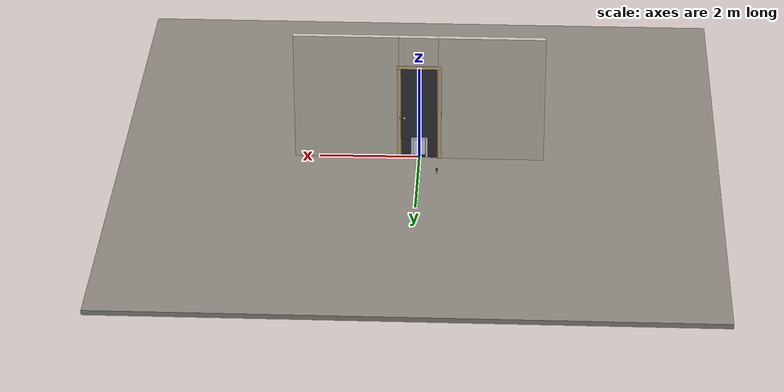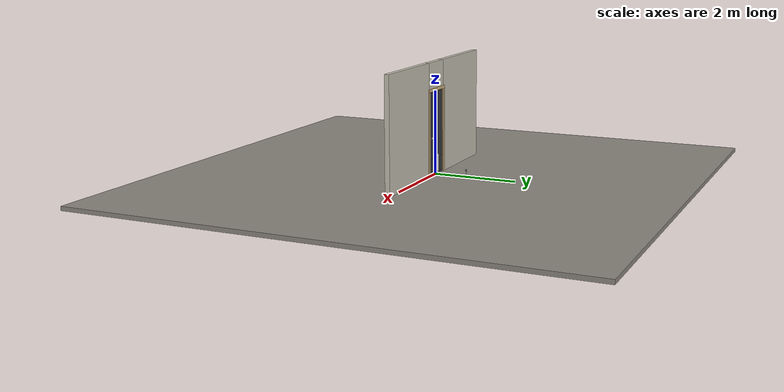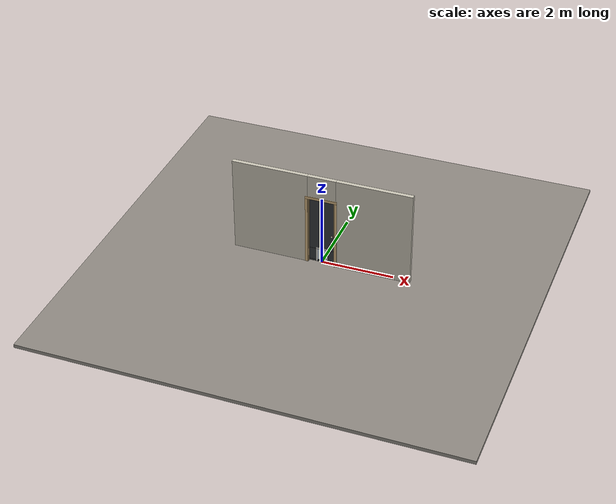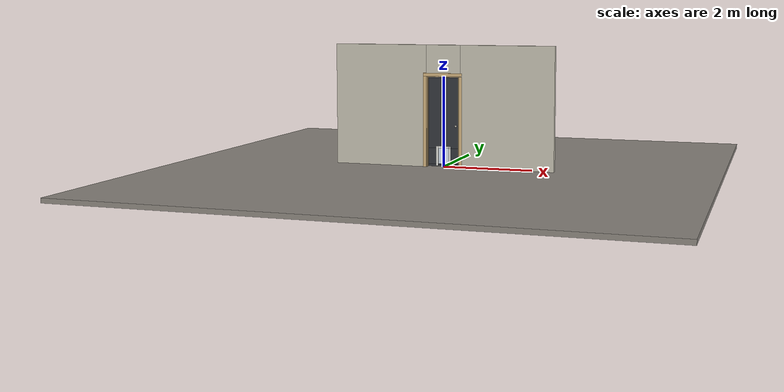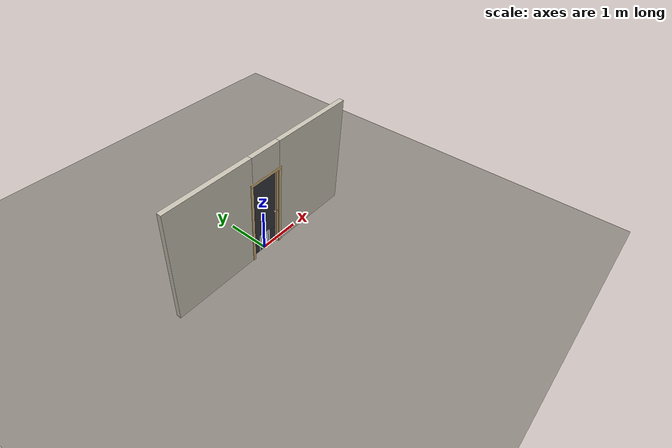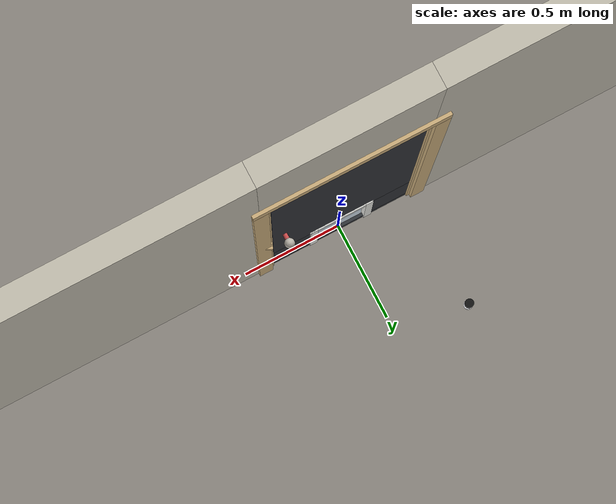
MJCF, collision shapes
<?xml version="1.0" ?>
<mujoco model="db0111_swing_single_full">
  <compiler angle="radian" meshdir="../../hardware" texturedir="../../textures" autolimits="true" inertiafromgeom="false"/>
  <option timestep="0.002" integrator="implicitfast" cone="elliptic" impratio="10" noslip_iterations="3">
    <flag multiccd="enable"/>
  </option>
  <size memory="16M"/>
  <default>
    <geom condim="4" solref="0.005 1" solimp="0.95 0.99 0.001"/>
    <joint solreflimit="0.005 1" solimplimit="0.95 0.99 0.001"/>
    <tendon solreflimit="0.005 1"/>
    <equality solref="0.002 1"/>
  </default>
  <visual>
    <headlight ambient="0.4 0.4 0.4" diffuse="0.7 0.7 0.7" specular="0.2 0.2 0.2"/>
    <quality shadowsize="4096"/>
    <map znear="0.01" zfar="60"/>
  </visual>
  <asset>
    <mesh name="coat_hook_d622d37ad0" file="coat_hook_d622d37ad0.obj"/>
    <mesh name="hinge_e3fd49fe13" file="hinge_e3fd49fe13.obj"/>
    <mesh name="hinge_jamb_e47eb19c39" file="hinge_jamb_e47eb19c39.obj"/>
    <mesh name="knob_248d825e64" file="knob_248d825e64.obj"/>
    <mesh name="knob_d1888f6f03" file="knob_d1888f6f03.obj"/>
    <material name="mat_floor" rgba="0.55 0.53 0.5 1" specular="0.2" shininess="0.15" reflectance="0"/>
    <material name="mat_wall" rgba="0.78 0.76 0.7 1" specular="0.2" shininess="0.1" reflectance="0"/>
    <material name="mat_leaf" rgba="0.2 0.21 0.23 1" specular="0.2" shininess="0.48" reflectance="0"/>
    <material name="mat_leaf_louver" rgba="0.17 0.178 0.196 1" specular="0.2" shininess="0.4" reflectance="0"/>
    <material name="mat_hinge" rgba="0.65 0.66 0.68 1" specular="0.74" shininess="0.5" reflectance="0.36"/>
    <material name="mat_op_nickel_satin" rgba="0.72 0.7 0.66 1" specular="0.8" shininess="0.65" reflectance="0.4"/>
    <material name="mat_trim" rgba="0.85 0.66 0.3 1" specular="0.8" shininess="0.75" reflectance="0.4"/>
    <material name="mat_bolt" rgba="0.85 0.66 0.3 1" specular="0.8" shininess="0.75" reflectance="0.4"/>
    <material name="mat_frame" rgba="0.82 0.7 0.5 1" specular="0.2" shininess="0.45" reflectance="0"/>
    <material name="mat_seal" rgba="0.1 0.1 0.1 1" specular="0.2" shininess="0.1" reflectance="0"/>
    <material name="mat_hook" rgba="0.9 0.9 0.92 1" specular="0.8" shininess="0.9" reflectance="0.4"/>
    <material name="mat_petframe" rgba="0.92 0.92 0.9 1" specular="0.2" shininess="0.6" reflectance="0"/>
    <material name="mat_petflap" rgba="0.85 0.9 0.95 0.45" specular="0.2" shininess="0.7" reflectance="0.1"/>
    <material name="mat_bumper_stop" rgba="0.08 0.08 0.08 1" specular="0.2" shininess="0.1" reflectance="0"/>
    <material name="mat_stop_base" rgba="0.9 0.9 0.92 1" specular="0.8" shininess="0.9" reflectance="0.4"/>
    <texture name="skybox" type="skybox" builtin="gradient" rgb1="0.6 0.7 0.85" rgb2="0.9 0.92 0.95" width="256" height="256"/>
  </asset>
  <worldbody>
    <light name="sun" pos="1.5 -2.5 4" dir="-0.3 0.5 -0.8" directional="true" diffuse="0.8 0.8 0.8" specular="0.3 0.3 0.3" castshadow="true"/>
    <light name="fill" pos="-1.5 2.5 3" dir="0.3 -0.5 -0.7" directional="true" diffuse="0.35 0.35 0.4" castshadow="false"/>
    <camera name="robot_view" pos="0 -2.531125 1.698475" xyaxes="1 0 0 0 0.26963 0.962964" fovy="52"/>
    <camera name="far_view" pos="0 2.465125 1.698475" xyaxes="-1 0 0 0 -0.26963 0.962964" fovy="52"/>
    <camera name="iso" pos="1.898575 -2.131425 2.098175" xyaxes="0.741536 0.670913 0 -0.242917 0.268487 0.932151" fovy="46"/>
    <camera name="detail_handle" pos="0.475 -0.864 1.194" xyaxes="0.97561 0.219512 0 -0.070934 0.315262 0.94635" fovy="38"/>
    <geom name="floor" type="box" size="6 6 0.05" pos="0 0 -0.05" material="mat_floor" group="0" contype="1" conaffinity="1" friction="0.8 0.005 0.0001" density="2400"/>
    <geom name="wall_left" type="box" size="1.061 0.0575 1.35" pos="-1.439 -0.033 1.35" material="mat_wall" group="0" contype="1" conaffinity="1" friction="0.6 0.005 0.0001" density="800"/>
    <geom name="wall_right" type="box" size="1.046 0.0575 1.35" pos="1.454 -0.033 1.35" material="mat_wall" group="0" contype="1" conaffinity="1" friction="0.6 0.005 0.0001" density="800"/>
    <geom name="wall_header" type="box" size="0.393 0.0575 0.3265" pos="0.015 -0.033 2.3735" material="mat_wall" group="0" contype="1" conaffinity="1" friction="0.6 0.005 0.0001" density="800"/>
    <geom name="hinge_0_jamb" type="mesh" mesh="hinge_jamb_e47eb19c39" pos="-0.356 0.0245 0.259" quat="0 1 0 0" material="mat_hinge" group="1" contype="0" conaffinity="0" density="7850"/>
    <geom name="hinge_1_jamb" type="mesh" mesh="hinge_jamb_e47eb19c39" pos="-0.356 0.0245 1.814" quat="0 1 0 0" material="mat_hinge" group="1" contype="0" conaffinity="0" density="7850"/>
    <geom name="jamb_hinge" type="box" size="0.0095 0.0575 0.999" pos="-0.3685 -0.033 0.999" material="mat_frame" group="0" contype="1" conaffinity="1" friction="0.6 0.005 0.0001" density="400"/>
    <geom name="strike_914_wall_n" type="box" size="0.0245 0.041325 0.0167" pos="0.3835 -0.049175 0.914" material="mat_frame" group="0" contype="1" conaffinity="1" friction="0.6 0.005 0.0001" density="400"/>
    <geom name="strike_914_wall_p" type="box" size="0.0245 0.008 0.0167" pos="0.3835 0.01585 0.914" material="mat_frame" group="0" contype="1" conaffinity="1" friction="0.6 0.005 0.0001" density="400"/>
    <geom name="strike_914_ramp" type="box" size="0.0245 0.01649 0.0167" pos="0.388136 0.028673 0.914" quat="0.977148 0 0 -0.212558" material="mat_frame" group="0" contype="1" conaffinity="1" friction="0.12 0.005 0.0001" density="400"/>
    <geom name="strike_914_back" type="box" size="0.01615 0.00785 0.0167" pos="0.39185 0 0.914" material="mat_frame" group="0" contype="1" conaffinity="1" friction="0.6 0.005 0.0001" density="400"/>
    <geom name="jamb_strike_0" type="box" size="0.0245 0.0575 0.44865" pos="0.3835 -0.033 0.44865" material="mat_frame" group="0" contype="1" conaffinity="1" friction="0.6 0.005 0.0001" density="400"/>
    <geom name="jamb_strike_1" type="box" size="0.0245 0.0575 0.53365" pos="0.3835 -0.033 1.46435" material="mat_frame" group="0" contype="1" conaffinity="1" friction="0.6 0.005 0.0001" density="400"/>
    <geom name="jamb_head" type="box" size="0.393 0.0575 0.0095" pos="0.015 -0.033 2.0075" material="mat_frame" group="0" contype="1" conaffinity="1" friction="0.6 0.005 0.0001" density="400"/>
    <geom name="head_stud" type="box" size="0.393 0.0575 0.015" pos="0.015 -0.033 2.032" material="mat_wall" group="0" contype="1" conaffinity="1" friction="0.6 0.005 0.0001" density="500"/>
    <geom name="stop_hinge" type="box" size="0.0055 0.016 0.999" pos="-0.3535 -0.034 0.999" material="mat_frame" group="0" contype="1" conaffinity="1" friction="0.6 0.005 0.0001" density="400"/>
    <geom name="stop_strike" type="box" size="0.0055 0.016 0.999" pos="0.3535 -0.034 0.999" material="mat_frame" group="0" contype="1" conaffinity="1" friction="0.6 0.005 0.0001" density="400"/>
    <geom name="stop_head" type="box" size="0.359 0.016 0.0055" pos="0 -0.034 1.9925" material="mat_frame" group="0" contype="1" conaffinity="1" friction="0.6 0.005 0.0001" density="400"/>
    <geom name="seal_hinge" type="box" size="0.004 0.002 0.999" pos="-0.356 -0.0195 0.999" material="mat_seal" group="1" contype="0" conaffinity="0" density="1100"/>
    <geom name="seal_strike" type="box" size="0.004 0.002 0.999" pos="0.356 -0.0195 0.999" material="mat_seal" group="1" contype="0" conaffinity="0" density="1100"/>
    <geom name="seal_head" type="box" size="0.339 0.002 0.008" pos="0 -0.0195 1.986" material="mat_seal" group="1" contype="0" conaffinity="0" density="1100"/>
    <geom name="casing_l_n" type="box" size="0.035 0.008 1.0085" pos="-0.408 -0.0985 0.999" material="mat_frame" group="2" contype="0" conaffinity="0" density="400"/>
    <geom name="casing_r_n" type="box" size="0.035 0.008 1.0085" pos="0.408 -0.0985 0.999" material="mat_frame" group="2" contype="0" conaffinity="0" density="400"/>
    <geom name="casing_h_n" type="box" size="0.443 0.008 0.035" pos="0 -0.0985 2.047" material="mat_frame" group="2" contype="0" conaffinity="0" density="400"/>
    <geom name="casing_l_p" type="box" size="0.035 0.008 1.0085" pos="-0.408 0.0325 0.999" material="mat_frame" group="2" contype="0" conaffinity="0" density="400"/>
    <geom name="casing_r_p" type="box" size="0.035 0.008 1.0085" pos="0.408 0.0325 0.999" material="mat_frame" group="2" contype="0" conaffinity="0" density="400"/>
    <geom name="casing_h_p" type="box" size="0.443 0.008 0.035" pos="0 0.0325 2.047" material="mat_frame" group="2" contype="0" conaffinity="0" density="400"/>
    <geom name="door_stop_base" type="cylinder" size="0.022 0.003" pos="-0.372 0.62885 0.003" material="mat_stop_base" group="0" contype="1" conaffinity="1" friction="0.6 0.005 0.0001" density="7850"/>
    <geom name="door_stop_post" type="cylinder" size="0.012 0.0245" pos="-0.372 0.62885 0.0305" material="mat_stop_base" group="0" contype="1" conaffinity="1" friction="0.6 0.005 0.0001" density="7850"/>
    <geom name="door_stop_bumper" type="cylinder" size="0.022 0.02" pos="-0.372 0.62885 0.075" material="mat_bumper_stop" group="0" contype="1" conaffinity="1" friction="0.6 0.005 0.0001" density="1100"/>
    <site name="approach_point" pos="0 -1.5 0" quat="1 0 0 0" size="0.05" rgba="0.2 0.9 0.2 0.5" group="4"/>
    <site name="goal_point" pos="0 1.5 0" quat="1 0 0 0" size="0.05" rgba="0.2 0.9 0.2 0.5" group="4"/>
    <site name="door_plane_center" pos="0 0 0.999" quat="1 0 0 0" size="0.02" rgba="0.2 0.9 0.2 0.5" group="4"/>
    <body name="leaf" pos="-0.359 0 0">
      <inertial pos="0.347254 0.000777 0.901644" mass="13.129868" quat="-0.49747 0.500017 0.500322 0.50218" diaginertia="0.548181054 4.63460893 5.179117431"/>
      <joint name="leaf_hinge" type="hinge" axis="0 0 1" pos="0.003 0.0245 0" limited="true" range="0 1.570796" solreflimit="0.02 1" damping="2.091613" frictionloss="3.711586" stiffness="4.4" springref="-1.096605" armature="0.02"/>
      <geom name="leaf_slab_below" type="box" size="0.3555 0.0175 0.0245" pos="0.3585 0 0.0335" material="mat_leaf" group="0" contype="1" conaffinity="1" friction="0.35 0.005 0.0001" density="1"/>
      <geom name="leaf_slab_above" type="box" size="0.3555 0.0175 0.787" pos="0.3585 0 1.207" material="mat_leaf" group="0" contype="1" conaffinity="1" friction="0.35 0.005 0.0001" density="1"/>
      <geom name="leaf_slab_left" type="box" size="0.11475 0.0175 0.181" pos="0.11775 0 0.239" material="mat_leaf" group="0" contype="1" conaffinity="1" friction="0.35 0.005 0.0001" density="1"/>
      <geom name="leaf_slab_right" type="box" size="0.11475 0.0175 0.181" pos="0.59925 0 0.239" material="mat_leaf" group="0" contype="1" conaffinity="1" friction="0.35 0.005 0.0001" density="1"/>
      <geom name="leaf_louver_4" type="box" size="0.2655 0.002 0.026527" pos="0.3585 0 0.454723" quat="0.953717 0.300706 0 0" material="mat_leaf_louver" group="1" contype="0" conaffinity="0" density="1"/>
      <geom name="leaf_louver_5" type="box" size="0.2655 0.002 0.026527" pos="0.3585 0 0.50525" quat="0.953717 0.300706 0 0" material="mat_leaf_louver" group="1" contype="0" conaffinity="0" density="1"/>
      <geom name="leaf_louver_6" type="box" size="0.2655 0.002 0.026527" pos="0.3585 0 0.555777" quat="0.953717 0.300706 0 0" material="mat_leaf_louver" group="1" contype="0" conaffinity="0" density="1"/>
      <geom name="leaf_louver_7" type="box" size="0.2655 0.002 0.026527" pos="0.3585 0 0.606305" quat="0.953717 0.300706 0 0" material="mat_leaf_louver" group="1" contype="0" conaffinity="0" density="1"/>
      <geom name="leaf_louver_8" type="box" size="0.2655 0.002 0.026527" pos="0.3585 0 0.656832" quat="0.953717 0.300706 0 0" material="mat_leaf_louver" group="1" contype="0" conaffinity="0" density="1"/>
      <geom name="leaf_louver_9" type="box" size="0.2655 0.002 0.026527" pos="0.3585 0 0.707359" quat="0.953717 0.300706 0 0" material="mat_leaf_louver" group="1" contype="0" conaffinity="0" density="1"/>
      <geom name="leaf_louver_10" type="box" size="0.2655 0.002 0.026527" pos="0.3585 0 0.757886" quat="0.953717 0.300706 0 0" material="mat_leaf_louver" group="1" contype="0" conaffinity="0" density="1"/>
      <geom name="leaf_louver_11" type="box" size="0.2655 0.002 0.026527" pos="0.3585 0 0.808414" quat="0.953717 0.300706 0 0" material="mat_leaf_louver" group="1" contype="0" conaffinity="0" density="1"/>
      <geom name="leaf_louver_12" type="box" size="0.2655 0.002 0.026527" pos="0.3585 0 0.858941" quat="0.953717 0.300706 0 0" material="mat_leaf_louver" group="1" contype="0" conaffinity="0" density="1"/>
      <geom name="leaf_louver_13" type="box" size="0.2655 0.002 0.026527" pos="0.3585 0 0.909468" quat="0.953717 0.300706 0 0" material="mat_leaf_louver" group="1" contype="0" conaffinity="0" density="1"/>
      <geom name="leaf_louver_14" type="box" size="0.2655 0.002 0.026527" pos="0.3585 0 0.959995" quat="0.953717 0.300706 0 0" material="mat_leaf_louver" group="1" contype="0" conaffinity="0" density="1"/>
      <geom name="leaf_louver_15" type="box" size="0.2655 0.002 0.026527" pos="0.3585 0 1.010523" quat="0.953717 0.300706 0 0" material="mat_leaf_louver" group="1" contype="0" conaffinity="0" density="1"/>
      <geom name="leaf_louver_16" type="box" size="0.2655 0.002 0.026527" pos="0.3585 0 1.06105" quat="0.953717 0.300706 0 0" material="mat_leaf_louver" group="1" contype="0" conaffinity="0" density="1"/>
      <geom name="leaf_louver_17" type="box" size="0.2655 0.002 0.026527" pos="0.3585 0 1.111577" quat="0.953717 0.300706 0 0" material="mat_leaf_louver" group="1" contype="0" conaffinity="0" density="1"/>
      <geom name="leaf_louver_18" type="box" size="0.2655 0.002 0.026527" pos="0.3585 0 1.162105" quat="0.953717 0.300706 0 0" material="mat_leaf_louver" group="1" contype="0" conaffinity="0" density="1"/>
      <geom name="leaf_louver_19" type="box" size="0.2655 0.002 0.026527" pos="0.3585 0 1.212632" quat="0.953717 0.300706 0 0" material="mat_leaf_louver" group="1" contype="0" conaffinity="0" density="1"/>
      <geom name="leaf_louver_20" type="box" size="0.2655 0.002 0.026527" pos="0.3585 0 1.263159" quat="0.953717 0.300706 0 0" material="mat_leaf_louver" group="1" contype="0" conaffinity="0" density="1"/>
      <geom name="leaf_louver_21" type="box" size="0.2655 0.002 0.026527" pos="0.3585 0 1.313686" quat="0.953717 0.300706 0 0" material="mat_leaf_louver" group="1" contype="0" conaffinity="0" density="1"/>
      <geom name="leaf_louver_22" type="box" size="0.2655 0.002 0.026527" pos="0.3585 0 1.364214" quat="0.953717 0.300706 0 0" material="mat_leaf_louver" group="1" contype="0" conaffinity="0" density="1"/>
      <geom name="leaf_louver_23" type="box" size="0.2655 0.002 0.026527" pos="0.3585 0 1.414741" quat="0.953717 0.300706 0 0" material="mat_leaf_louver" group="1" contype="0" conaffinity="0" density="1"/>
      <geom name="leaf_louver_24" type="box" size="0.2655 0.002 0.026527" pos="0.3585 0 1.465268" quat="0.953717 0.300706 0 0" material="mat_leaf_louver" group="1" contype="0" conaffinity="0" density="1"/>
      <geom name="leaf_louver_25" type="box" size="0.2655 0.002 0.026527" pos="0.3585 0 1.515795" quat="0.953717 0.300706 0 0" material="mat_leaf_louver" group="1" contype="0" conaffinity="0" density="1"/>
      <geom name="leaf_louver_26" type="box" size="0.2655 0.002 0.026527" pos="0.3585 0 1.566323" quat="0.953717 0.300706 0 0" material="mat_leaf_louver" group="1" contype="0" conaffinity="0" density="1"/>
      <geom name="leaf_louver_27" type="box" size="0.2655 0.002 0.026527" pos="0.3585 0 1.61685" quat="0.953717 0.300706 0 0" material="mat_leaf_louver" group="1" contype="0" conaffinity="0" density="1"/>
      <geom name="leaf_louver_28" type="box" size="0.2655 0.002 0.026527" pos="0.3585 0 1.667377" quat="0.953717 0.300706 0 0" material="mat_leaf_louver" group="1" contype="0" conaffinity="0" density="1"/>
      <geom name="leaf_louver_29" type="box" size="0.2655 0.002 0.026527" pos="0.3585 0 1.717905" quat="0.953717 0.300706 0 0" material="mat_leaf_louver" group="1" contype="0" conaffinity="0" density="1"/>
      <geom name="leaf_louver_30" type="box" size="0.2655 0.002 0.026527" pos="0.3585 0 1.768432" quat="0.953717 0.300706 0 0" material="mat_leaf_louver" group="1" contype="0" conaffinity="0" density="1"/>
      <geom name="leaf_louver_31" type="box" size="0.2655 0.002 0.026527" pos="0.3585 0 1.818959" quat="0.953717 0.300706 0 0" material="mat_leaf_louver" group="1" contype="0" conaffinity="0" density="1"/>
      <geom name="leaf_louver_32" type="box" size="0.2655 0.002 0.026527" pos="0.3585 0 1.869486" quat="0.953717 0.300706 0 0" material="mat_leaf_louver" group="1" contype="0" conaffinity="0" density="1"/>
      <geom name="hinge_0" type="mesh" mesh="hinge_e3fd49fe13" pos="0.003 0.0245 0.259" quat="0 1 0 0" material="mat_hinge" group="1" contype="0" conaffinity="0" density="7850"/>
      <geom name="hinge_1" type="mesh" mesh="hinge_e3fd49fe13" pos="0.003 0.0245 1.814" quat="0 1 0 0" material="mat_hinge" group="1" contype="0" conaffinity="0" density="7850"/>
      <geom name="leaf_latch_bolt_faceplate" type="box" size="0.0006 0.01235 0.0267" pos="0.7134 0 0.914" material="mat_bolt" group="1" contype="0" conaffinity="0" density="8500"/>
      <geom name="coat_hook" type="mesh" mesh="coat_hook_d622d37ad0" pos="0.3585 0.0175 1.644" quat="-0.707107 0.707107 0 0" material="mat_hook" group="2" contype="0" conaffinity="0" density="7000"/>
      <geom name="pet_frame_top" type="box" size="0.165 0.0235 0.02" pos="0.3585 0 0.439" material="mat_petframe" group="2" contype="0" conaffinity="0" density="1200"/>
      <geom name="pet_frame_l" type="box" size="0.02 0.0235 0.22" pos="0.2135 0 0.239" material="mat_petframe" group="2" contype="0" conaffinity="0" density="1200"/>
      <geom name="pet_frame_r" type="box" size="0.02 0.0235 0.22" pos="0.5035 0 0.239" material="mat_petframe" group="2" contype="0" conaffinity="0" density="1200"/>
      <site name="leaf_edge_mid" pos="0.714 0 0.9925" quat="1 0 0 0" size="0.02" rgba="0.2 0.9 0.2 0.5" group="4"/>
      <body name="leaf_handle" pos="0.654 0 0.914">
        <inertial pos="0 -0.000216 0" mass="1.146661" quat="0.5 0.5 0.5 0.5" diaginertia="0.000312402 0.003728942 0.003728942"/>
        <joint name="leaf_handle_hinge" type="hinge" axis="0 -1 0" limited="true" range="0 0.87" damping="0.143613" frictionloss="0.038" stiffness="0.5" springref="-0.5" armature="0.01"/>
        <geom name="leaf_handle_spindle" type="cylinder" size="0.006 0.0255" pos="0 0 0" quat="0.707107 -0.707107 0 0" material="mat_op_nickel_satin" group="1" contype="0" conaffinity="0" density="7850"/>
        <geom name="leaf_handle_knob_n" type="mesh" mesh="knob_248d825e64" pos="0 -0.0175 0" quat="0.707107 0.707107 0 0" material="mat_op_nickel_satin" group="1" contype="0" conaffinity="0" density="3000"/>
        <geom name="leaf_handle_knob_col_n" type="sphere" size="0.0243" pos="0 -0.064 0" material="mat_op_nickel_satin" group="0" contype="1" conaffinity="1" friction="0.9 0.01 0.0001" density="3000"/>
        <geom name="leaf_handle_knob_neck_n" type="cylinder" size="0.011 0.012" pos="0 -0.0295 0" quat="0.707107 -0.707107 0 0" material="mat_op_nickel_satin" group="3" contype="1" conaffinity="1" rgba="0.8 0.3 0.3 0.25" friction="0.6 0.005 0.0001" density="3000"/>
        <geom name="leaf_handle_knob_p" type="mesh" mesh="knob_d1888f6f03" pos="0 0.0175 0" quat="-0.707107 0.707107 0 0" material="mat_op_nickel_satin" group="1" contype="0" conaffinity="0" density="3000"/>
        <geom name="leaf_handle_knob_col_p" type="sphere" size="0.0243" pos="0 0.064 0" material="mat_op_nickel_satin" group="0" contype="1" conaffinity="1" friction="0.9 0.01 0.0001" density="3000"/>
        <geom name="leaf_handle_knob_neck_p" type="cylinder" size="0.011 0.012" pos="0 0.0295 0" quat="0.707107 -0.707107 0 0" material="mat_op_nickel_satin" group="3" contype="1" conaffinity="1" rgba="0.8 0.3 0.3 0.25" friction="0.6 0.005 0.0001" density="3000"/>
        <site name="leaf_handle_grip_n" pos="0 -0.064 0" quat="1 0 0 0" size="0.012" rgba="0.2 0.9 0.2 0.5" group="4"/>
        <site name="leaf_handle_grip_p" pos="0 0.064 0" quat="1 0 0 0" size="0.012" rgba="0.2 0.9 0.2 0.5" group="4"/>
      </body>
      <body name="leaf_latch_bolt" pos="0.714 0 0.914">
        <inertial pos="-0.00865 0 0" mass="0.041419" quat="0.92388 -0.382683 0 0" diaginertia="0.000000798 0.000005598 0.000005598"/>
        <joint name="leaf_latch_bolt_slide" type="slide" axis="-1 0 0" limited="true" range="0 0.0127" damping="2" frictionloss="0.3" stiffness="300" springref="-0.008333" armature="0.1"/>
        <geom name="leaf_latch_bolt_capsule" type="capsule" size="0.00635 0.015" pos="-0.00865 0 0" quat="0.707107 0 0.707107 0" material="mat_bolt" group="0" contype="1" conaffinity="1" friction="0.2 0.005 0.0001" density="8500"/>
      </body>
      <body name="pet_flap" pos="0.3585 0 0.419">
        <inertial pos="0 0 -0.18" mass="0.086345" quat="-0.5 0.5 0.5 0.5" diaginertia="0.000421506 0.000891653 0.001312929"/>
        <joint name="pet_flap_hinge" type="hinge" axis="1 0 0" limited="true" range="-1.45 1.45" damping="0.02" frictionloss="0.02" armature="0.005"/>
        <geom name="pet_flap_geom" type="box" size="0.121 0.002 0.176" pos="0 0 -0.18" material="mat_petflap" group="0" contype="1" conaffinity="1" friction="0.6 0.005 0.0001" density="1250"/>
      </body>
    </body>
  </worldbody>
  <tendon>
    <fixed name="leaf_latch_bolt_coupling" limited="true" range="0 10">
      <joint joint="leaf_latch_bolt_slide" coef="1"/>
      <joint joint="leaf_handle_hinge" coef="-0.015679"/>
    </fixed>
  </tendon>
  <sensor>
    <jointpos name="leaf_hinge_pos" joint="leaf_hinge"/>
    <jointvel name="leaf_hinge_vel" joint="leaf_hinge"/>
    <jointpos name="leaf_handle_hinge_pos" joint="leaf_handle_hinge"/>
    <jointvel name="leaf_handle_hinge_vel" joint="leaf_handle_hinge"/>
    <jointpos name="leaf_latch_bolt_slide_pos" joint="leaf_latch_bolt_slide"/>
    <jointvel name="leaf_latch_bolt_slide_vel" joint="leaf_latch_bolt_slide"/>
    <jointpos name="pet_flap_hinge_pos" joint="pet_flap_hinge"/>
    <jointvel name="pet_flap_hinge_vel" joint="pet_flap_hinge"/>
  </sensor>
</mujoco>
